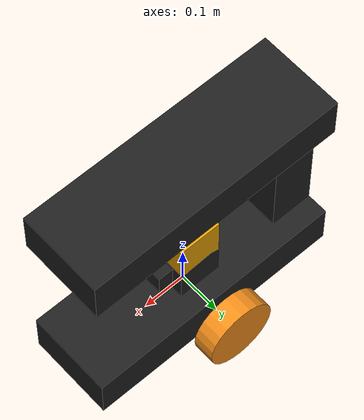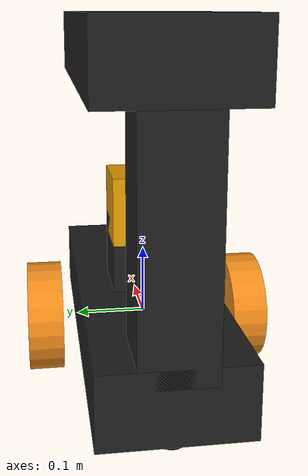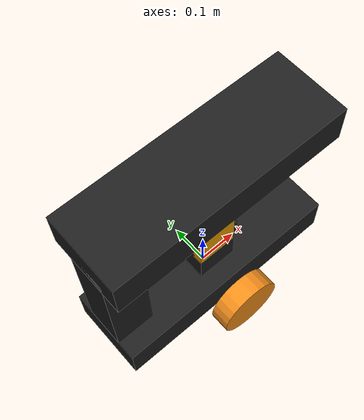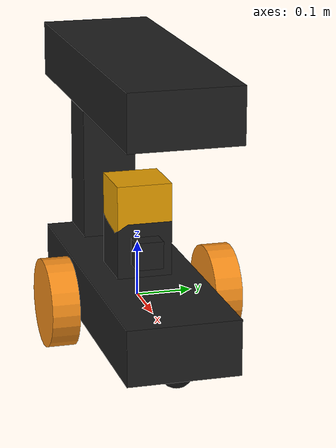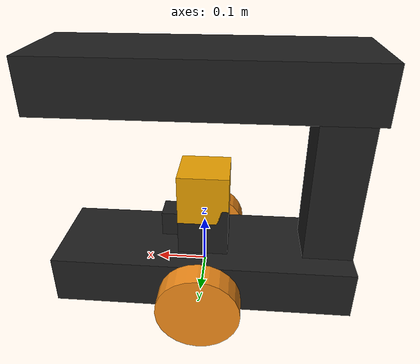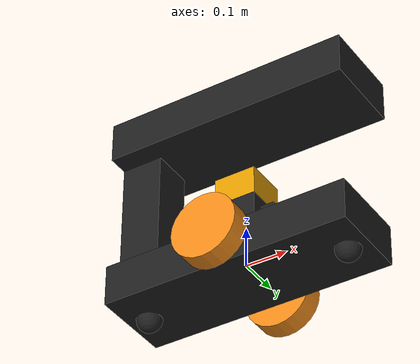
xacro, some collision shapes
<?xml version='1.0'?>

<robot name="my_robot" xmlns:xacro="http://www.ros.org/wiki/xacro">

  <link name="robot_footprint"></link>
  <xacro:include filename="$(find my_robot)/urdf/my_robot.gazebo" />

  <joint name="robot_footprint_joint" type="fixed">
    <origin xyz="0 0 0" rpy="0 0 0" />
    <parent link="robot_footprint"/>
    <child link="chassis" />
  </joint>

  <joint name="sensor_holder_joint" type="fixed">
    <origin xyz="0 0 0" rpy="0 0 0" />
    <parent link="chassis"/>
    <child link="sensor_holder" />
  </joint>

  <joint name="hammock_joint" type="fixed">
    <origin xyz="0 0 .1" rpy="0 0 0" />
    <parent link="chassis"/>
    <child link="hammock" />
  </joint>

  <joint name="hammock_top_joint" type="fixed">
    <origin xyz="0 0 0.3" rpy="0 0 0" />
    <parent link="hammock"/>
    <child link="hammock_top" />
  </joint>

  <joint type="continuous" name="left_wheel_hinge">
    <origin xyz="0 0.15 0" rpy="0 0 0"/>
    <child link="left_wheel"/>
    <parent link="chassis"/>
    <axis xyz="0 1 0" rpy="0 0 0"/>
    <limit effort="10000" velocity="1000"/>
    <dynamics damping="1.0" friction="1.0"/>
  </joint>

  <joint type="continuous" name="right_wheel_hinge">
    <origin xyz="0 -0.15 0" rpy="0 0 0"/>
    <child link="right_wheel"/>
    <parent link="chassis"/>
    <axis xyz="0 1 0" rpy="0 0 0"/>
    <limit effort="10000" velocity="1000"/>
    <dynamics damping="1.0" friction="1.0"/>
  </joint>

  <joint type="fixed" name="sensor_joint">
  	<origin xyz="0 0 0.17" rpy="0 0 0"/>
  	<child link="hokuyo"/>
  	<parent link="sensor_holder"/>
  	<axis xyz="0 1 0"/>
  </joint>

  <joint type="fixed" name="camera_joint">
    <origin xyz="0.06 0 0.1" rpy="0 0 0"/>
    <child link="camera"/>
    <parent link="sensor_holder"/>
    <axis xyz="0 1 0"/>
  </joint>

  <gazebo reference="left_wheel">
    <material>Gazebo/Orange</material>
  </gazebo>

  <gazebo reference="right_wheel">
    <material>Gazebo/Orange</material>
  </gazebo>

  <gazebo reference="chassis">
    <material>Gazebo/Black</material>
  </gazebo>

  <gazebo reference="hammock">
    <material>Gazebo/Black</material>
  </gazebo>

  <gazebo reference="hammock_top">
    <material>Gazebo/Black</material>
  </gazebo>

  <gazebo reference="sensor_holder">
    <material>Gazebo/Black</material>
  </gazebo>
  <gazebo reference="camera">
    <material>Gazebo/Black</material>
  </gazebo>

  <link name='chassis'>
    <pose>0 0 0.1 0 0 0</pose>

    <inertial>
      <mass value="15.0"/>
      <origin xyz="0.0 0 0" rpy=" 0 0 0"/>
      <inertia
          ixx="0.1" ixy="0" ixz="0"
          iyy="0.1" iyz="0"
          izz="0.1"
      />
    </inertial>

    <collision name='collision'>
      <origin xyz="0 0 0" rpy=" 0 0 0"/>
      <geometry>
        <box size=".6 .2 .1"/>
      </geometry>
    </collision>

    <visual name='chassis_visual'>
      <origin xyz="0 0 0" rpy=" 0 0 0"/>
      <geometry>
        <box size=".6 .2 .1"/>
      </geometry>
    </visual>

    <collision name='back_caster_collision'>
      <origin xyz="-0.25 0 -0.05" rpy=" 0 0 0"/>
      <geometry>
        <sphere radius="0.03"/>
      </geometry>
    </collision>

    <visual name='back_caster_visual'>
      <origin xyz="-0.25 0 -0.05" rpy=" 0 0 0"/>
      <geometry>
        <sphere radius="0.03"/>
      </geometry>
    </visual>

    <collision name='front_caster_collision'>
      <origin xyz="0.25 0 -0.05" rpy=" 0 0 0"/>
      <geometry>
        <sphere radius="0.03"/>
      </geometry>
    </collision>

    <visual name='front_caster_visual'>
      <origin xyz="0.25 0 -0.05" rpy=" 0 0 0"/>
      <geometry>
        <sphere radius="0.03"/>
      </geometry>
    </visual>

  </link>

  <link name='sensor_holder'>
    <pose>0 0 0.1 0 0 0</pose>

    <inertial>
      <mass value="2.0"/>
      <origin xyz="0.0 0 0.1" rpy=" 0 0 0"/>
      <inertia
          ixx="0.1" ixy="0" ixz="0"
          iyy="0.1" iyz="0"
          izz="0.1"
      />
    </inertial>

    <collision name='sensor_col'>
      <origin xyz="0 0 0.1" rpy=" 0 0 0"/>
      <geometry>
        <box size=".1 .1 .1"/>
      </geometry>
    </collision>

    <visual name='sensor_vis'>
      <origin xyz="0 0 0.1" rpy=" 0 0 0"/>
      <geometry>
        <box size=".1 .1 .1"/>
      </geometry>
    </visual>

  </link>

  <link name='left_wheel'>
    <inertial>
      <mass value="5.0"/>
      <origin xyz="0.0 0 0" rpy=" 0 1.5707 1.5707"/>
      <inertia
          ixx="0.1" ixy="0" ixz="0"
          iyy="0.1" iyz="0"
          izz="0.1"
      />
    </inertial>

    <collision name='left_wheel_collision'>
      <origin xyz="0.0 0 0" rpy=" 0 1.5707 1.5707"/>
      <geometry>
        <cylinder length="0.05" radius="0.08"/>
      </geometry>
    </collision>

    <visual name='left_wheel_visual'>
      <origin xyz="0.0 0 0" rpy=" 0 1.5707 1.5707"/>
       <geometry>
        <cylinder length="0.05" radius="0.08"/>
      </geometry>
    </visual>

  </link>

  <link name='right_wheel'>
    <inertial>
      <mass value="5.0"/>
      <origin xyz="0.0 0 0" rpy=" 0 1.5707 1.5707"/>
      <inertia
          ixx="0.1" ixy="0" ixz="0"
          iyy="0.1" iyz="0"
          izz="0.1"
      />
    </inertial>

    <collision name='right_wheel_collision'>
      <origin xyz="0 0 0" rpy=" 0 1.5707 1.5707"/>
      <geometry>
        <cylinder length="0.05" radius="0.08"/>
      </geometry>
    </collision>

    <visual name='right_wheel_visual'>
      <origin xyz="0.0 0 0" rpy=" 0 1.5707 1.5707"/>
       <geometry>
        <cylinder length="0.05" radius="0.08"/>
      </geometry>
    </visual>

  </link>

  <link name='camera'>
  	<visual name='camera_vis'>
	    <origin xyz="0 0 0" rpy="0 0 0"/>
	      <geometry>
	      	<box size="0.05 0.05 0.05"/>
	      </geometry>
    </visual>

    <collision name='camera_col'>
    	<origin xyz="0 0 0" rpy="0 0 0"/>
    	<geometry>
    		<box size="0.05 0.05 0.05"/>
    	</geometry>
    </collision>

    <inertial>
    	<mass value="0.1"/>
    	<origin xyz="0 0 0" rpy="0 0 0"/>
    	<inertia
    	  ixx="1e-6" ixy="0" ixz="0"
          iyy="1e-6" iyz="0"
          izz="1e-6"
    	/>
    </inertial>
  </link>

  <link name='hammock'>
    <pose>0 0 0.1 0 0 0</pose>
    <material>Gazebo/Black</material>
    <inertial>
      <mass value="0.1"/>
      <origin xyz="-.25 0 0.1" rpy=" 0 0 0"/>
      <inertia
          ixx="0.1" ixy="0" ixz="0"
          iyy="0.1" iyz="0"
          izz="0.1"
      />
    </inertial>

    <collision name='hammock_col'>
      <origin xyz="-.25 0 0.1" rpy=" 0 0 0"/>
      <geometry>
        <box size=".1 .1 .35"/>
      </geometry>
    </collision>

    <visual name='hammock_vis'>
      <origin xyz="-.25 0 0.1" rpy=" 0 0 0"/>
      <geometry>
        <box size=".1 .1 .35"/>
      </geometry>
    </visual>

  </link>

  <link name='hammock_top'>
    <pose>0 0 0.1 0 0 0</pose>

    <inertial>
      <mass value="0.1"/>
      <origin xyz="0 0 0" rpy=" 0 0 0"/>
      <inertia
          ixx="0.1" ixy="0" ixz="0"
          iyy="0.1" iyz="0"
          izz="0.1"
      />
    </inertial>

    <collision name='top_col'>
      <origin xyz="0 0 0" rpy=" 0 0 0"/>
      <geometry>
        <box size=".6 .2 .1"/>
      </geometry>
    </collision>

    <visual name='top_vis'>
      <origin xyz="0 0 0" rpy=" 0 0 0"/>
      <geometry>
        <box size=".6 .2 .1"/>
      </geometry>
    </visual>

  </link>

  <link name="hokuyo">
  	<visual name="sensor_vis">
  		<origin xyz="0 0 0" rpy="0 0 0"/>
  		<geometry>
        <mesh filename="package://my_robot/meshes/hokuyo.dae"/>
      </geometry>
  	</visual>

  	<collision name="sensor_col">
  		<origin xyz="0 0 0" rpy="0 0 0"/>
  		<geometry>
  			<box size="0.1 0.1 0.1"/>
  		</geometry>
  	</collision>

  	<inertial>
    	<mass value="1e-5"/>
    	<origin xyz="0 0 0" rpy="0 0 0"/>
    	<inertia
    	  ixx="1e-6" ixy="0" ixz="0"
          iyy="1e-6" iyz="0"
          izz="1e-6"
    	/>
    </inertial>

  </link>

</robot>
